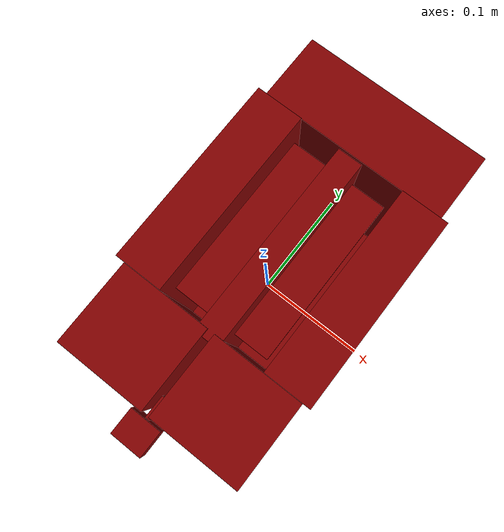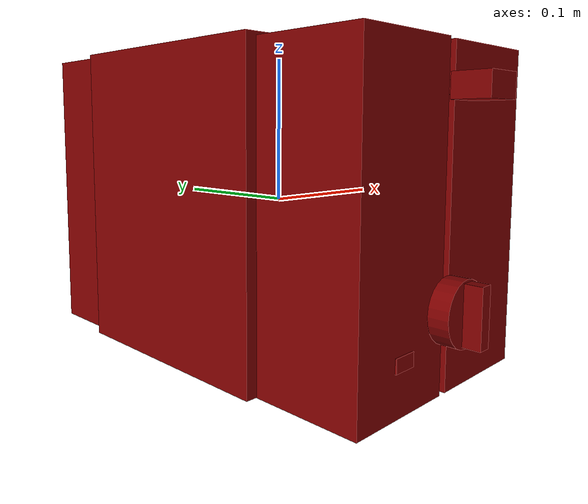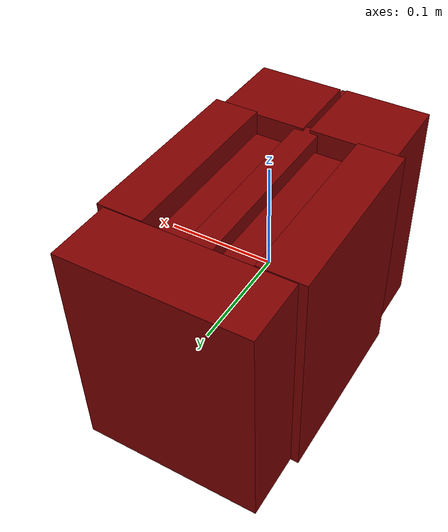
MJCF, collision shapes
<?xml version='1.0' encoding='UTF-8'?>
<mujoco model="model">
  <compiler angle="radian"/>
  <asset>
    <mesh file="visuals/Body001.obj" name="Body001_vis"/>
    <mesh file="visuals/Button001.obj" name="Button001_vis"/>
    <mesh file="visuals/Knob001.obj" name="Knob001_vis"/>
    <mesh file="visuals/Lever001.obj" name="Lever001_vis"/>
    <texture file="visuals/T_BC001.png" name="Body001_material" type="2d"/>
    <material name="Body001_material" rgba="1 1 1 1.0" texture="Body001_material" shininess="0.4472135901451111" specular="0.5"/>
    <texture file="visuals/T_BC001.png" name="Button001_material" type="2d"/>
    <material name="Button001_material" rgba="1 1 1 1.0" texture="Button001_material" shininess="0.4472135901451111" specular="0.3103448502657381"/>
    <texture file="visuals/T_BC001.png" name="Knob001_material" type="2d"/>
    <material name="Knob001_material" rgba="1 1 1 1.0" texture="Knob001_material" shininess="0.4472135901451111" specular="0.3103448502657381"/>
    <texture file="visuals/T_BC001.png" name="Lever001_material" type="2d"/>
    <material name="Lever001_material" rgba="1 1 1 1.0" texture="Lever001_material" shininess="0.4472135901451111" specular="0.3103448502657381"/>
  </asset>
  <default>
    <default class="visual">
      <geom conaffinity="0" contype="0" group="1" type="mesh"/>
    </default>
    <default class="collision">
      <geom group="0" rgba="0.5 0 0 0.5"/>
    </default>
    <default class="spawn">
      <geom group="0" rgba="1 1 1 0.5" contype="0" conaffinity="0"/>
      <site group="0" rgba="1 1 1 0.5"/>
    </default>
    <default class="region">
      <geom group="1" conaffinity="0" contype="0" rgba="0 1 0 0"/>
    </default>
  </default>
  <worldbody>
    <body>
      <body name="object">
        <geom mesh="Body001_vis" type="mesh" solimp="0.998 0.998 0.001" solref="0.001 1" density="100" friction="0.95 0.3 0.1" class="visual" material="Body001_material"/>
        <geom class="collision" type="box" pos="-0.068577 0.021821 -0.000281" size="0.020948339253664017 0.08444619923830032 0.10489681363105774" quat="1.0 0.0 0.0 0.0"/>
        <geom class="collision" type="box" pos="-0.042568 -0.099375 -0.001412" size="0.039433322846889496 0.03644528612494469 0.10376540571451187" quat="1.0 0.0 0.0 0.0"/>
        <geom class="collision" type="box" pos="0.042742 -0.099375 -0.001815" size="0.03966588154435158 0.03644528612494469 0.10336218029260635" quat="1.0 0.0 0.0 0.0"/>
        <geom class="collision" type="box" pos="0.068178 0.021821 -0.000368" size="0.020632304251194 0.08444619923830032 0.1048094630241394" quat="1.0 0.0 0.0 0.0"/>
        <geom class="collision" type="box" pos="0.000300 0.135949 -0.000568" size="0.08244103193283081 0.02983938902616501 0.10407587885856628" quat="1.0 0.0 0.0 0.0"/>
        <geom class="collision" type="box" pos="-0.000045 0.018100 0.032767" size="0.011021790094673634 0.08816640079021454 0.06665803492069244" quat="1.0 0.0 0.0 0.0"/>
        <geom class="collision" type="box" pos="0.000195 0.018100 -0.069916" size="0.046650230884552 0.08816640079021454 0.034289926290512085" quat="1.0 0.0 0.0 0.0"/>
        <body name="Button001">
          <joint axis="0.0 1.0 0.0" pos="-0.043550 -0.136294 -0.073495" limited="true" name="Button001_joint" range="0.0 0.002" type="slide" damping="1" frictionloss="1" armature=".01" stiffness="0.05"/>
          <geom mesh="Button001_vis" type="mesh" solimp="0.998 0.998 0.001" solref="0.001 1" density="100" friction="0.95 0.3 0.1" class="visual" material="Button001_material"/>
          <geom class="collision" type="box" pos="-0.043382 -0.137546 -0.073394" size="0.008162576705217361 0.0005323893274180591 0.004351870156824589" quat="1.0 0.0 0.0 0.0"/>
        </body>
        <body name="Knob001">
          <joint axis="0.0 1.0 0.0" pos="-0.000002 -0.146509 -0.053308" limited="true" name="Knob001_joint" range="0.0 5.497787143782138" type="hinge" damping="0.05" armature="0.001"/>
          <geom mesh="Knob001_vis" type="mesh" solimp="0.998 0.998 0.001" solref="0.001 1" density="100" friction="0.95 0.3 0.1" class="visual" material="Knob001_material"/>
          <geom class="collision" type="cylinder" pos="0.000000 -0.143179 -0.053367" size="0.02036231756210327 0.006477284710854292" quat="0.7071068286895752 0.7071067690849304 0.0 0.0"/>
          <geom class="collision" type="box" pos="0.000142 -0.155131 -0.053197" size="0.004485250450670719 0.005791298113763332 0.01846270263195038" quat="1.0 0.0 0.0 0.0"/>
        </body>
        <body name="Lever001">
          <joint axis="0.0 0.0 -1.0" pos="0.000000 -0.151261 0.074479" limited="true" name="Lever001_joint" range="0.0 0.08" type="slide" damping="1" frictionloss="1" armature=".01" stiffness="1" springref="-1.73"/>
          <geom mesh="Lever001_vis" type="mesh" solimp="0.998 0.998 0.001" solref="0.001 1" density="100" friction="0.95 0.3 0.1" class="visual" material="Lever001_material"/>
          <geom class="collision" type="box" pos="0.000052 -0.154219 0.074518" size="0.014131924137473106 0.011563438922166824 0.007472217548638582" quat="1.0 0.0 0.0 0.0" name="lever_knob"/>
          <geom class="collision" type="box" pos="-0.000011 -0.132665 0.074534" size="0.001985369948670268 0.009772082790732384 0.003962809219956398" quat="1.0 0.0 0.0 0.0"/>
          <geom class="collision" type="box" pos="-0.028298 0.019480 0.084691" size="0.01536607276648283 0.07378319650888443 0.0035157562233507633" quat="1.0 0.0 0.0 0.0" name="slotL_floor"/>
          <geom class="collision" type="box" pos="0.028420 0.019480 0.084691" size="0.015313372947275639 0.07378319650888443 0.003515758318826556" quat="1.0 0.0 0.0 0.0" name="slotR_floor"/>
        </body>
        <geom class="region" name="reg_main" type="box" pos="0.0 0.012333499999999997 0.0" size="0.088365 0.1535735 0.103642"/>
      </body>
    </body>
  </worldbody>
  <actuator>
    <motor name="Button001_joint_actuator" joint="Button001_joint" gear="0.5"/>
    <motor name="Knob001_joint_actuator" joint="Knob001_joint" gear="10"/>
    <motor name="Lever001_joint_actuator" joint="Lever001_joint" gear="2"/>
  </actuator>
</mujoco>
